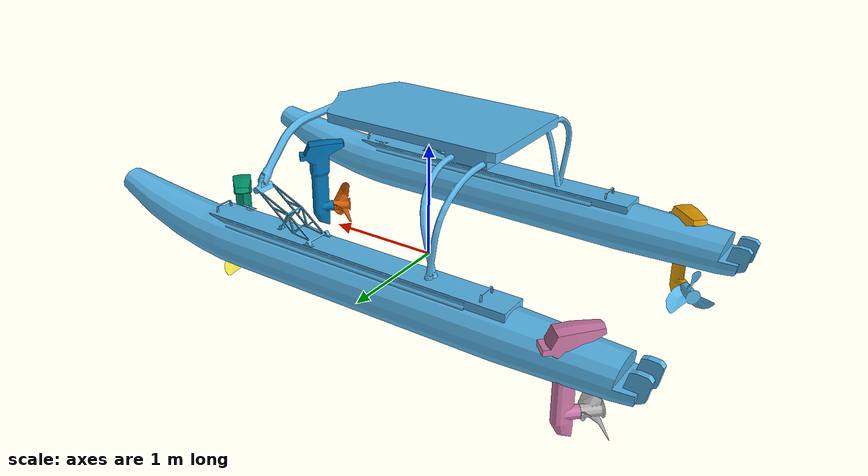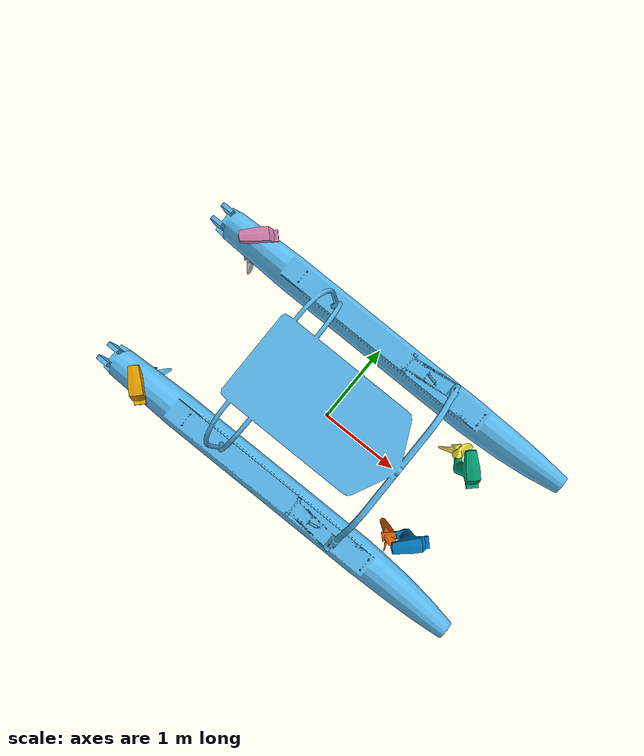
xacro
<?xml version="1.0"?>
<robot name="navigator" xmlns:xacro="http://ros.org/wiki/xacro">
  <!-- Defines the base vehicle -->
  <xacro:include filename="$(find wamv_description)/urdf/wamv_base.urdf.xacro" />

  <!-- Fixed frames for sensors -->
  <xacro:include filename="$(find navigator_gazebo)/urdf/fixed_link.xacro" />
  <xacro:include filename="$(find navigator_gazebo)/urdf/sylphase.xacro" />
  <xacro:fixed_link name="measurement"
                    xyz="1.2319 0 1.2" rpy="0 0 0" />

  <xacro:sylphase name="ins"
                  xyz="0.579628 0.136525 1.392278" rpy="0 0 0" />
  <xacro:fixed_link name="velodyne" parent="measurement"
                    xyz="-0.277622 0 0.648208" rpy="0 0 0" />
  <xacro:fixed_link name="sick" parent="measurement"
                    xyz="0.5334 -0.0254 -0.6858" rpy="0 0 0" />

  <xacro:fixed_link name="pinger_direction" parent="velodyne"
                    xyz="0.8382 0 -2.0828" rpy="0 0 0" />

  <!-- Camera frames with gazebo simulation plugins -->
  <xacro:include filename="$(find navigator_gazebo)/urdf/camera.xacro" />
  <xacro:navigator_camera name="front_left_cam" parent="velodyne"
                          namespace="/camera/front/left"
                          xyz="0.294 0.1 -0.45"
                          rpy="0 0.258 0" />
  <xacro:navigator_camera name="front_right_cam" parent="velodyne"
                           namespace="/camera/front/right"
                          xyz="0.294 -0.099 -0.45"
                          rpy="0 0.258 0" />
  <xacro:navigator_camera name="starboard_cam" parent="measurement"
                          namespace="/camera/starboard"
                          xyz="-0.4191 -0.6985 0.2159"
                          rpy="0 0 -1.570796" />

  <xacro:fixed_link name="shooter" parent="starboard_cam" xyz="0 0 0.2" rpy="0 0 0" />

  <!-- Add 4 thrusters -->
  <xacro:include filename="$(find navigator_gazebo)/urdf/thruster.xacro" />
  <xacro:navigator_thruster name="BL" x="-1.9304" y="1.016"   yaw="0.785398" />
  <xacro:navigator_thruster name="BR" x="-1.9304" y="-1.016"  yaw="-0.785398" />
  <xacro:navigator_thruster name="FL" x="1.5748"  y="0.6096"  yaw="-0.785398" />
  <xacro:navigator_thruster name="FR" x="1.5748"  y="-0.6096" yaw="0.785398" />

  <!-- Plugin to imitate roboteq motor driver for thrusters -->
  <gazebo>
    <plugin name="thrust_plugin" filename="libnavigator_thrusters.so">
      <thruster>BL</thruster>
      <thruster>BR</thruster>
      <thruster>FL</thruster>
      <thruster>FR</thruster>
    </plugin>
    <plugin name="pinger_heading_ground_truth" filename="libmil_model_heading.so">
      <topic>/hydrophones/direction</topic>
      <model>robotx_pinger</model>
      <offset>0.102 -.635 -0.324 0 0 0</offset>
      <frame>hydrophones</frame>
    </plugin>
  </gazebo>
  <xacro:fixed_link name="hydrophones" parent="base_link"
                    xyz="0.102 -.635 -0.324" rpy="0 0 0" />

  <xacro:include filename="$(find wamv_gazebo)/urdf/macros.xacro" />
  <!-- Attach hydrodynamics plugin -->
  <xacro:usv_dynamics_gazebo name="wamv_dynamics_plugin"/>
  <!-- Attach wind plugin -->
  <xacro:usv_wind_gazebo name="wamv_wind_plugin"/>
</robot>

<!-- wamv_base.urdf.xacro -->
<robot xmlns:xacro="http://ros.org/wiki/xacro" name="wam-v">
  <!-- Macro for creating the main collisions as simple shapes. -->
  <xacro:macro name="main_collisions" params="prefix reflect:=1">
    <!-- Main float -->
    <collision name="${prefix}_float">
      <origin xyz="-0.4 ${1.03*reflect} 0.2" rpy="${0*reflect} 1.57 0" />
      <geometry>
        <cylinder length="4" radius="0.2" />
      </geometry>
    </collision>

    <collision name="${prefix}_mid_float">
      <origin xyz="1.85 ${1.03*reflect} 0.3" rpy="${0*reflect} 1.38 0" />
      <geometry>
        <cylinder length="0.5" radius="0.17" />
      </geometry>
    </collision>
    <collision name="${prefix}_front_float">
      <origin xyz="2.3 ${1.03*reflect} 0.4" rpy="${0*reflect} 1.3 0" />
      <geometry>
        <cylinder length="0.45" radius="0.12" />
      </geometry>
    </collision>

    <!-- Front beam -->
    <collision name="front_${prefix}_beam_lower">
      <origin xyz="0.9 ${0.85*reflect} 1" rpy="${0.78*reflect} 0 0" />
      <geometry>
        <cylinder length="0.5" radius="0.04" />
      </geometry>
    </collision>

    <collision name="front_${prefix}_beam_upper">
      <origin xyz="0.9 ${0.6*reflect} 1.18" rpy="${1.35*reflect} 0 0" />
      <geometry>
        <cylinder length="0.2" radius="0.04" />
      </geometry>
    </collision>

    <!-- Mid beam -->
    <collision name="mid_${prefix}_beam_lower">
      <origin xyz="-0.65 ${0.99*reflect} 0.7" rpy="${0.1*reflect} 0.25 0" />
      <geometry>
        <cylinder length="0.45" radius="0.03" />
      </geometry>
    </collision>

    <collision name="mid_${prefix}_beam_medium">
      <origin xyz="-0.57 ${0.87*reflect} 1.05" rpy="${0.75*reflect} 0.25 0" />
      <geometry>
        <cylinder length="0.32" radius="0.03" />
      </geometry>
    </collision>

    <collision name="mid_${prefix}_beam_upper">
      <origin xyz="-0.55 ${0.65*reflect} 1.17" rpy="${1.35*reflect} 0.25 0" />
      <geometry>
        <cylinder length="0.3" radius="0.03" />
      </geometry>
    </collision>

    <!-- Rear beam -->
    <collision name="rear_${prefix}_beam_lower">
      <origin xyz="-0.74 ${1.03*reflect} 0.7" rpy="${0*reflect} -0.15 0" />
      <geometry>
        <cylinder length="0.45" radius="0.03" />
      </geometry>
    </collision>

    <collision name="rear_${prefix}_beam_medium">
      <origin xyz="-0.79 ${0.91*reflect} 1.05" rpy="${0.75*reflect} -0.15 0" />
      <geometry>
        <cylinder length="0.32" radius="0.03" />
      </geometry>
    </collision>

    <collision name="rear_${prefix}_beam_upper">
      <origin xyz="-0.81 ${0.67*reflect} 1.18" rpy="${1.45*reflect} -0.15 0" />
      <geometry>
        <cylinder length="0.3" radius="0.03" />
      </geometry>
    </collision>

    <!-- Joint -->
    <collision name="${prefix}_joint">
      <origin xyz="0.58 ${1.03*reflect} 0.6" rpy="${0*reflect} -0.6 0" />
      <geometry>
        <box size="0.65 0.2 0.1" />
      </geometry>
    </collision>
  </xacro:macro>

  <link name="base_link">
  </link>

  <joint name="dummy_joint" type = "fixed">
    <parent link="base_link"/>
    <child link="dummy_link"/>
  </joint>

  <!-- Basic model of the 16' WAM-V USV -->
  <link name="dummy_link">
    <visual>
      <geometry>
        <mesh filename="package://wamv_description/models/WAM-V-Base/mesh/WAM-V-Base.dae"/>
      </geometry>
    </visual>

    <!-- Left base collisions -->
    <xacro:main_collisions prefix="left" reflect="1" />

    <!-- Right side collisions -->
    <xacro:main_collisions prefix="right" reflect="-1" />

     <!-- Top base -->
    <collision name="top_base">
      <origin xyz="0 -0 1.25" rpy="0 0 0" />
      <geometry>
        <box size="1.85 1 0.1" />
      </geometry>
    </collision>

    <inertial>
      <!-- From WAM-V spec sheet -->
      <mass value="180.0"/>
      <inertia ixx="120.0" ixy="0.0" ixz="0.0" iyy="393" iyz="0.0" izz="446.0"/>
    </inertial>
  </link>

</robot>

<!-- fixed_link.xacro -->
<robot xmlns:xacro="http://ros.org/wiki/xacro">
  <xacro:macro  name="fixed_link"
                params="name parent='base_link'
                        xyz:='0 0 0' rpy:='0 0 0'">
    <link name="${name}" />
    <joint name="${name}_to_${parent}" type="fixed">
      <parent link="${parent}" />
      <child link="${name}" />
      <origin xyz="${xyz}" rpy="${rpy}" />
    </joint>
  </xacro:macro>
</robot>

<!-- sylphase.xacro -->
<robot xmlns:xacro="http://ros.org/wiki/xacro">
  <xacro:macro name="sylphase" params="name='ins' parent='base_link'
                        xyz:='0 0 0' rpy:='0 0 0'">
    <xacro:include filename="$(find navigator_gazebo)/urdf/fixed_link_persistent.xacro"/>
    <link name="${name}"/>
    <gazebo reference="${name}">
      <sensor name="${name}_imu" type="imu"/>
      <sensor name="${name}_gps" type="gps"/>
    </gazebo>
    <joint name="${name}_to_base_link" type="fixed">
      <parent link="${parent}"/>
      <child link="${name}"/>
      <origin xyz="${xyz}" rpy="${rpy}"/>
    </joint>
    <gazebo>
      <plugin name="sylphase_plugin" filename="libsylphase_gazebo.so">
        <pose>${xyz} ${rpy}</pose>
        <child_frame>${name}</child_frame>
        <odom_topic>ins_odom</odom_topic>
      </plugin>
    </gazebo>
  </xacro:macro>
</robot>

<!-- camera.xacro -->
<robot xmlns:xacro="http://ros.org/wiki/xacro">
  <!-- Macro for inserting an engine with its propeller. -->
  <xacro:macro  name="navigator_camera"
                params="name namespace:='/camera'
                        parent='base_link' xyz:='0 0 0' rpy:='0 0 0'
                        width:=960 height:=600 fov:=1.047 fps:=30
                        k1:=0 k2:=0 t1:=0 t2:=0 k3:=0">
    <link name="${name}" />
    <joint name="${name}_to_${parent}" type="fixed">
      <parent link="${parent}" />
      <child link="${name}" />
      <origin xyz="${xyz}" rpy="${rpy}" />
    </joint>
    <link name="${name}_optical" />
    <joint name="${name}_to_${name}_optical" type="fixed">
      <parent link="${name}" />
      <child link="${name}_optical" />
      <origin xyz="0 0 0" rpy="${-pi/2} 0 ${-pi/2}"/>
    </joint>
    <gazebo reference="${name}">
      <sensor name="${name}_sensor" type="camera">
        <update_rate>${fps}</update_rate>
        <camera name="${name}_camera">
          <pose>0 0 0 0 0 0</pose>
          <horizontal_fov>${fov}</horizontal_fov>
          <image>
            <width>960</width>
            <height>600</height>
          </image>
          <distortion>
            <k1>${k1}</k1>
            <k2>${k2}</k2>
            <k3>${k3}</k3>
            <p1>${t1}</p1>
            <p2>${t2}</p2>
          </distortion>
        </camera>
        <plugin name="${name}_controller" filename="libgazebo_ros_camera.so">
          <robotNamespace>/</robotNamespace>
          <cameraName>${namespace}</cameraName>
          <updateRate>0</updateRate>
          <imageTopicName>${namespace}/image_raw</imageTopicName>
          <cameraInfoTopicName>${namespace}/camera_info</cameraInfoTopicName>
          <frameName>${name}_optical</frameName>
          <distortionK1>${k1}</distortionK1>
          <distortionK2>${k2}</distortionK2>
          <distortionK3>${k3}</distortionK3>
          <distortionT1>${t1}</distortionT1>
          <distortionT2>${t2}</distortionT2>
        </plugin>
      </sensor>
    </gazebo>
  </xacro:macro>
</robot>

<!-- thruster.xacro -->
<robot xmlns:xacro="http://ros.org/wiki/xacro" name="wam-v-two-engines">
  <!-- Macro for inserting an engine with its propeller. -->
  <xacro:macro  name="navigator_thruster" params="name x y yaw">
    <!-- Location of propeller from origin of engine -->
    <xacro:property name="prop_x_offset" value="-0.278156" />

    <!-- Transform engine position so macro position is position of propeller -->
    <xacro:property name="s_yaw" value="${sin(yaw)}" />
    <xacro:property name="c_yaw" value="${cos(yaw)}" />
    <xacro:property name="x_engine" value="${x + c_yaw*(-prop_x_offset) - s_yaw*(0)} " />
    <xacro:property name="y_engine" value="${y + s_yaw*(-prop_x_offset) + c_yaw*(0)} " />

    <link name="${name}_engine_link">
      <visual>
        <geometry>
          <mesh filename="package://wamv_description/mesh/engine.dae"/>
        </geometry>
      </visual>
      <collision name="${name}_engine_vertical_axis_collision">
        <origin xyz="-0.16 0 -0.24" rpy="0 0 0" />
        <geometry>
          <box size="0.2 0.15 0.83" />
        </geometry>
      </collision>
      <collision name="${name}_engine_rear_end_collision">
        <origin xyz="-0.34 0 0.12" rpy="0 0 0" />
        <geometry>
          <box size="0.12 0.15 0.12" />
        </geometry>
      </collision>
      <inertial>
        <mass value="15"/>
        <inertia ixx="0.889245" ixy="0.0" ixz="0.0" iyy="0.911125" iyz="0.0" izz="0.078125"/>
      </inertial>
    </link>

    <link name="${name}_propeller_link">
      <visual>
        <geometry>
          <mesh filename="package://wamv_description/mesh/propeller.dae"/>
        </geometry>
      </visual>
      <collision name="${name}_propeller_collision">
        <origin xyz="-0.08 0 0" rpy="0 1.57 0" />
        <geometry>
          <cylinder length="0.18" radius="0.24" />
        </geometry>
      </collision>
      <inertial>
        <mass value="0.5"/>
        <inertia ixx="0.008545" ixy="0.0" ixz="0.0" iyy="0.008545" iyz="0.0" izz="0.0144"/>
      </inertial>
    </link>

    <joint name="${name}_chasis_engine_joint" type="fixed">
      <origin xyz="${x_engine} ${y_engine} 0.318237" rpy="0.0 0.0 ${yaw}"/>
      <parent link="base_link"/>
      <child link="${name}_engine_link"/>
    </joint>

    <joint name="${name}_engine_propeller_joint" type="continuous">
      <axis rpy="0 0 0" xyz="1 0 0"/>
      <parent link="${name}_engine_link"/>
      <child link="${name}_propeller_link"/>
      <origin rpy="0 0 0" xyz="${prop_x_offset} 0 -0.509371"/>
      <limit effort="400" velocity="100" />
      <dynamics friction="100" damping="0.3" />
    </joint>
  </xacro:macro>
</robot>
